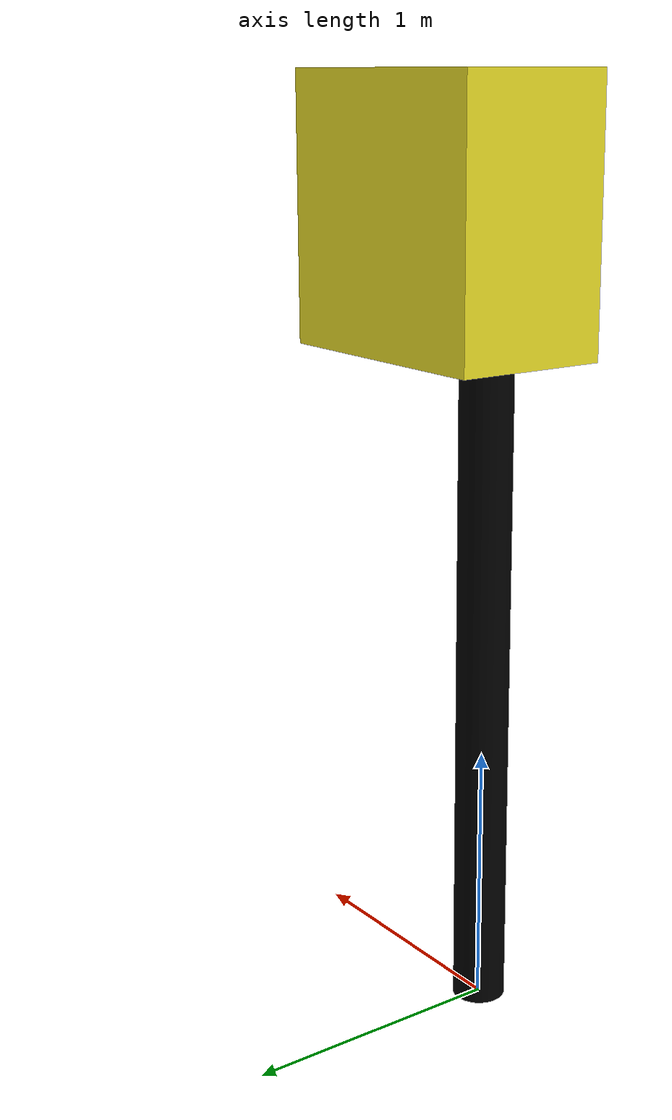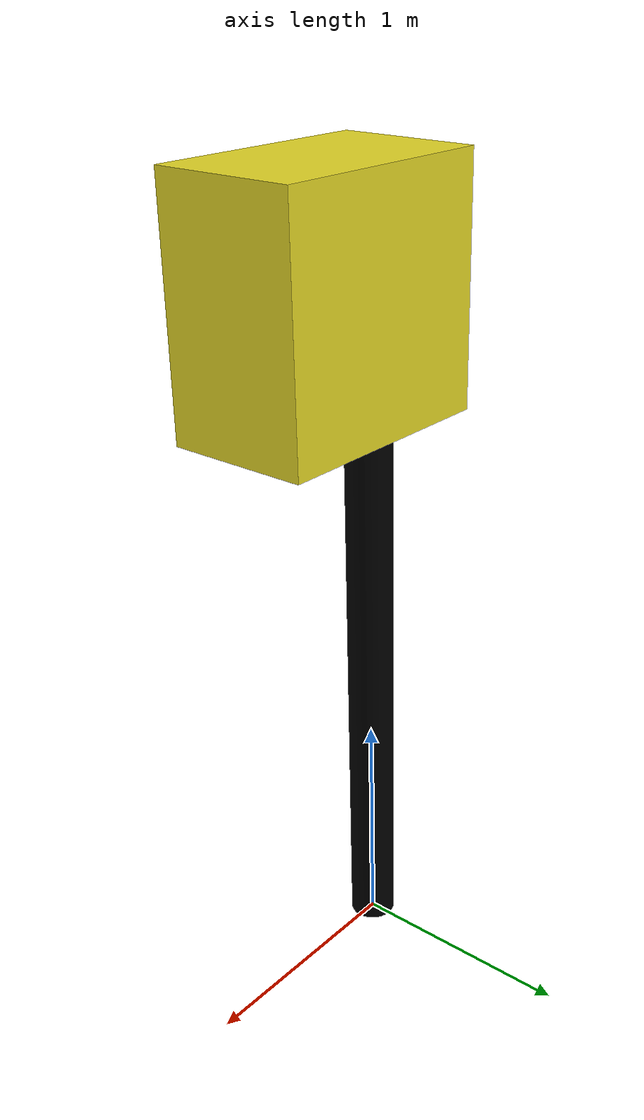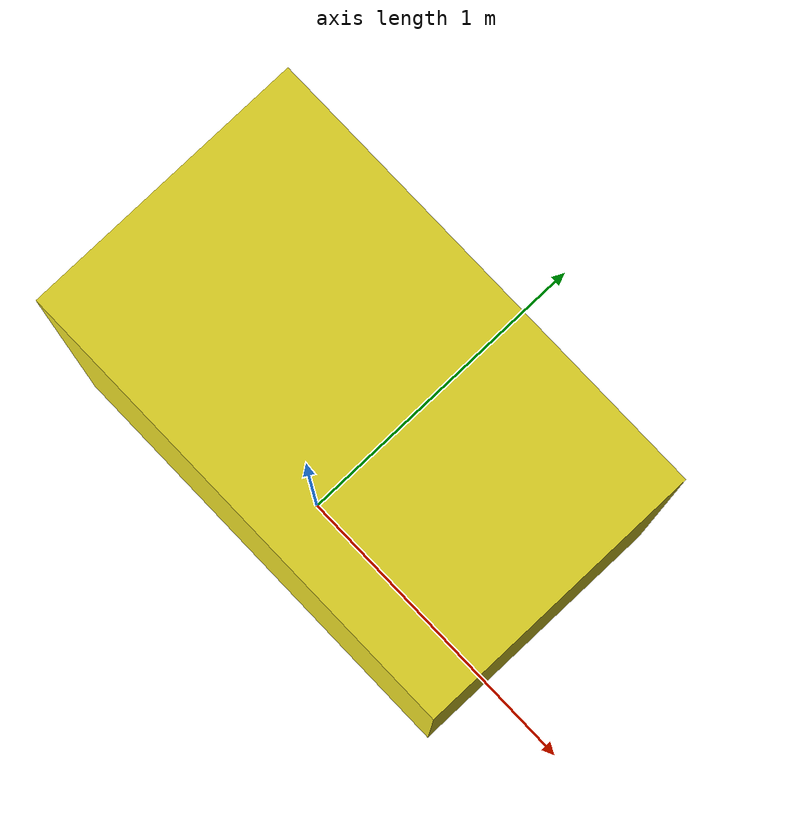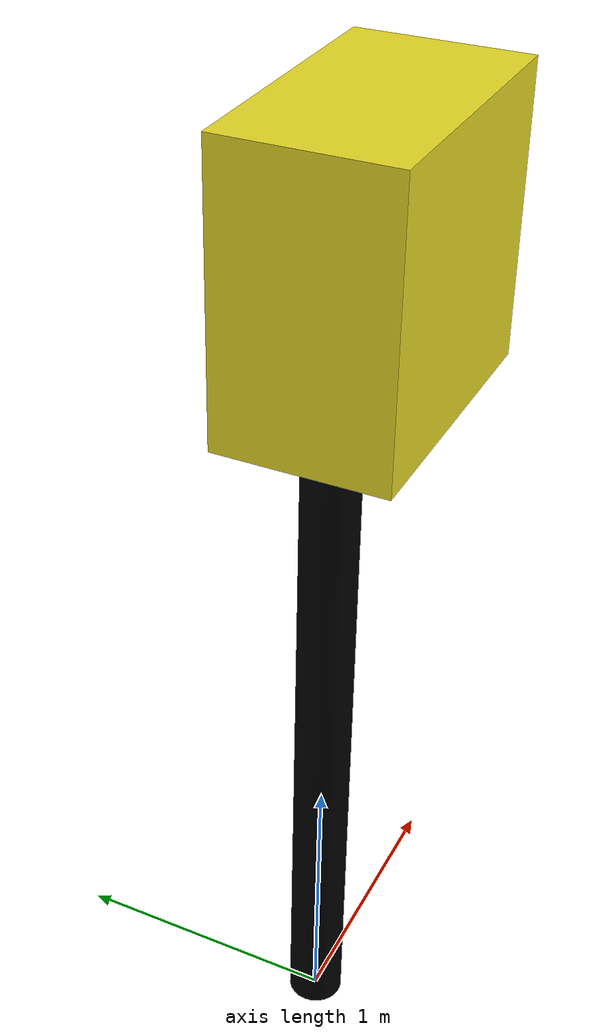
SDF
<?xml version="1.0" encoding="UTF-8"?>
<sdf version="1.4">
  <model name="flag">
    <static>true</static>
    <link name="flag">
      <visual name="base">
        <pose>0 0 1.5 0 0 0</pose>
        <geometry>
          <cylinder>
            <radius>0.1</radius>
            <length>3</length>
          </cylinder>
        </geometry>

        <!-- BLACK -->
        <material>
          <ambient>0 0 0 1</ambient>
        </material>
      </visual>

      <visual name="top">
        <pose>0.25 0 3 0 0 0</pose>
        <geometry>
          <box>
            <size>1 0.6 1</size>
          </box>
        </geometry>

        <!-- YELLOW -->
        <material>
          <script>
            <uri>file://media/materials/scripts/gazebo.material</uri>
            <name>Gazebo/Yellow</name>
          </script>
        </material>

      </visual>
    </link>
  </model>
</sdf>
